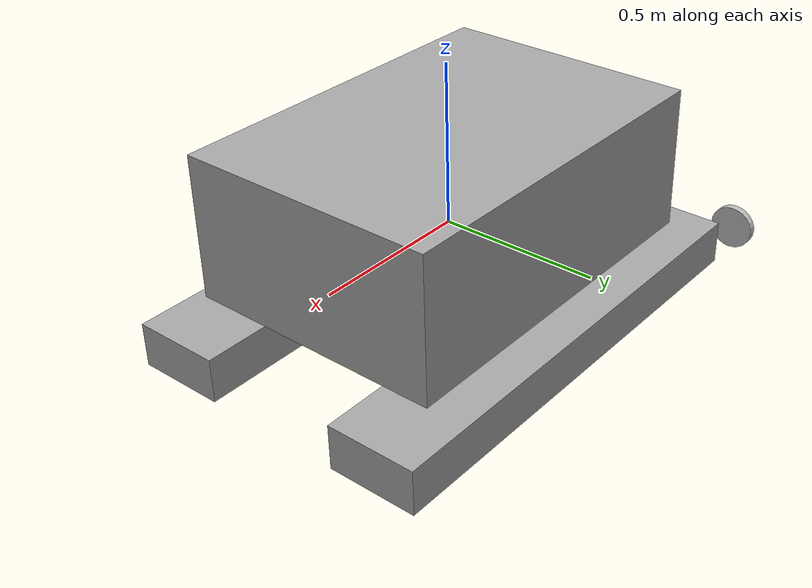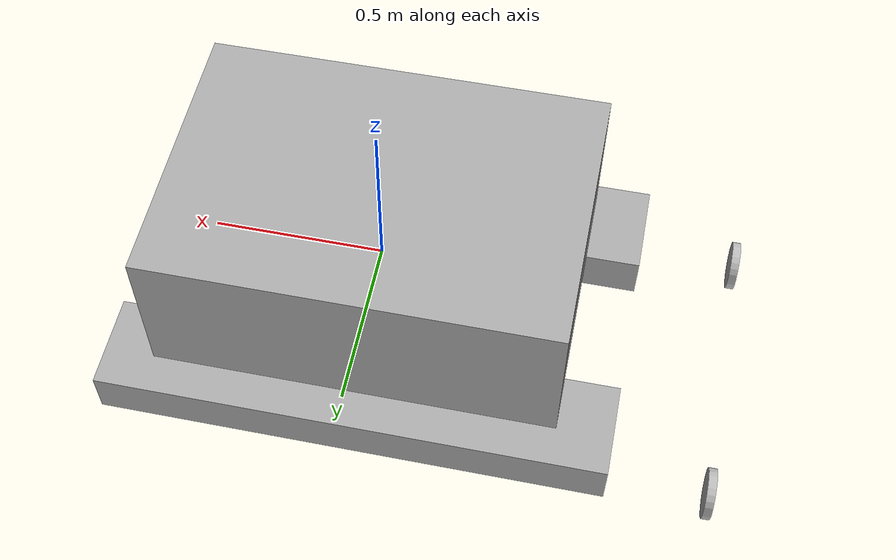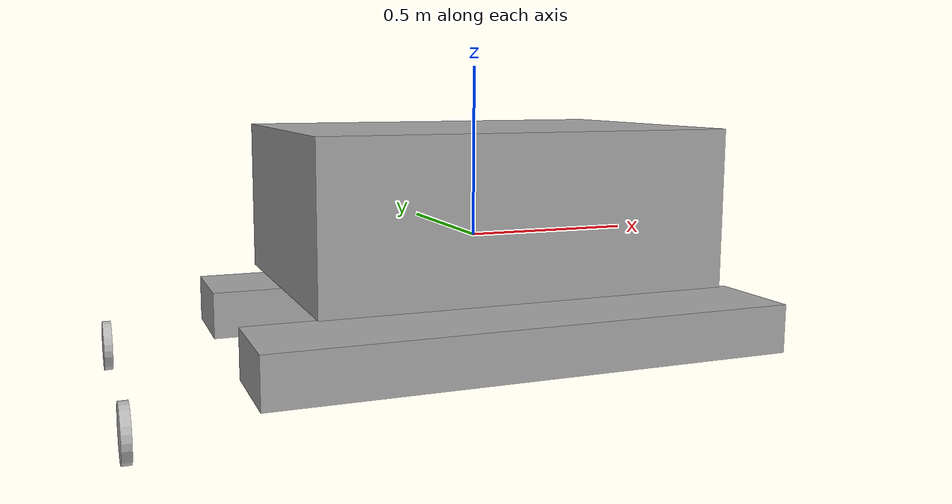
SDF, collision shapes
<?xml version="1.0"?>
<sdf version="1.9">
  <model name="gamantaray_boat">
    <pose>0 0 0 0 0 0</pose>

    <link name="base_link">
      <gravity>true</gravity>
      <pose>0 0 0 0 0 0</pose>

      <inertial>
        <pose>0 0 -0.05 0 0 0</pose>
        <mass>55.0</mass>
        <inertia>
          <ixx>16.0</ixx>
          <ixy>0</ixy>
          <ixz>0</ixz>
          <iyy>40.0</iyy>
          <iyz>0</iyz>
          <izz>36.0</izz>
        </inertia>
      </inertial>

      <visual name="assembly_visual">
        <!-- Visual waterline offset for the imported OBJ. Buoyancy is handled
             by the two pontoon collision volumes below. -->
        <pose>-1.144 0 -0.28 0 0 0</pose>
        <geometry>
          <mesh>
            <uri>model://gamantaray_boat/meshes/assembly_2_0.obj</uri>
            <scale>0.02 0.02 0.02</scale>
          </mesh>
        </geometry>
      </visual>

      <collision name="main_hull_collision">
        <pose>0 0 0.1 0 0 0</pose>
        <geometry>
          <box>
            <size>1.175 0.82 0.45</size>
          </box>
        </geometry>
        <surface>
          <contact>
            <collide_without_contact>false</collide_without_contact>
          </contact>
        </surface>
      </collision>

      <collision name="left_buoyancy_volume">
        <pose>0 0.36 -0.24 0 0 0</pose>
        <geometry>
          <box>
            <size>1.50 0.28 0.14</size>
          </box>
        </geometry>
        <surface>
          <contact>
            <collide_without_contact>true</collide_without_contact>
          </contact>
        </surface>
      </collision>

      <collision name="right_buoyancy_volume">
        <pose>0 -0.36 -0.24 0 0 0</pose>
        <geometry>
          <box>
            <size>1.50 0.28 0.14</size>
          </box>
        </geometry>
        <surface>
          <contact>
            <collide_without_contact>true</collide_without_contact>
          </contact>
        </surface>
      </collision>

      <visual name="lidar_mast_visual">
        <pose>0.52 0 0.78 0 0 0</pose>
        <geometry>
          <cylinder>
            <radius>0.025</radius>
            <length>1.42</length>
          </cylinder>
        </geometry>
        <material>
          <diffuse>0.65 0.65 0.65 1</diffuse>
        </material>
      </visual>

      <visual name="sensor_crossbar_visual">
        <pose>0.52 0 0.98 0 0 0</pose>
        <geometry>
          <box>
            <size>0.16 0.40 0.05</size>
          </box>
        </geometry>
        <material>
          <diffuse>0.72 0.72 0.72 1</diffuse>
        </material>
      </visual>

      <sensor name="imu_sensor" type="imu">
        <topic>/asv/imu/data</topic>
        <always_on>true</always_on>
        <update_rate>100</update_rate>
      </sensor>

      <sensor name="ardupilot_imu_sensor" type="imu">
        <pose>0 0 0 3.141593 0 0</pose>
        <always_on>true</always_on>
        <update_rate>100</update_rate>
      </sensor>

      <sensor name="gps_sensor" type="navsat">
        <pose>0.52 0 1.00 0 0 0</pose>
        <topic>/asv/gps/fix</topic>
        <always_on>true</always_on>
        <update_rate>10</update_rate>
        <navsat>
          <position_sensing>
            <horizontal>
              <noise type="gaussian">
                <mean>0</mean>
                <stddev>0.4</stddev>
              </noise>
            </horizontal>
            <vertical>
              <noise type="gaussian">
                <mean>0</mean>
                <stddev>0.8</stddev>
              </noise>
            </vertical>
          </position_sensing>
        </navsat>
      </sensor>

      <sensor name="lidar_sensor" type="gpu_lidar">
        <pose>0.95 0 0.32 0 0 0</pose>
        <topic>/asv/lidar/scan_raw</topic>
        <always_on>true</always_on>
        <visualize>true</visualize>
        <update_rate>15</update_rate>
        <lidar>
          <scan>
            <horizontal>
              <samples>720</samples>
              <resolution>1</resolution>
              <min_angle>-3.14159</min_angle>
              <max_angle>3.14159</max_angle>
            </horizontal>
            <vertical>
              <samples>1</samples>
              <resolution>1</resolution>
              <min_angle>0</min_angle>
              <max_angle>0</max_angle>
            </vertical>
          </scan>
          <range>
            <min>0.45</min>
            <max>10.0</max>
            <resolution>0.02</resolution>
          </range>
          <noise>
            <type>gaussian</type>
            <mean>0.0</mean>
            <stddev>0.015</stddev>
          </noise>
        </lidar>
      </sensor>

      <sensor name="front_camera_sensor" type="camera">
        <pose>0.85 0 1.25 0 0.10 0</pose>
        <topic>/asv/camera/front/image</topic>
        <always_on>true</always_on>
        <update_rate>10</update_rate>
        <visualize>true</visualize>
        <camera>
          <horizontal_fov>1.3962634</horizontal_fov>
          <image>
            <width>640</width>
            <height>360</height>
            <format>R8G8B8</format>
          </image>
          <clip>
            <near>0.05</near>
            <far>80.0</far>
          </clip>
        </camera>
      </sensor>
    </link>

    <link name="left_propeller_link">
      <gravity>true</gravity>
      <pose relative_to="left_propeller_joint">0 0 0 0 0 0</pose>
      <collision name="left_propeller_collision">
        <pose>0 0 0 0 1.570796 0</pose>
        <geometry>
          <cylinder>
            <radius>0.075</radius>
            <length>0.025</length>
          </cylinder>
        </geometry>
      </collision>
      <inertial>
        <mass>0.10</mass>
        <inertia>
          <ixx>0.00010</ixx>
          <ixy>0</ixy>
          <ixz>0</ixz>
          <iyy>0.00010</iyy>
          <iyz>0</iyz>
          <izz>0.00015</izz>
        </inertia>
      </inertial>
    </link>

    <joint name="left_propeller_joint" type="revolute">
      <pose relative_to="base_link">-1.05 0.41 -0.35 0 0 0</pose>
      <parent>base_link</parent>
      <child>left_propeller_link</child>
      <axis>
        <xyz>1 0 0</xyz>
        <limit>
          <lower>-1e+16</lower>
          <upper>1e+16</upper>
          <effort>120</effort>
          <velocity>900</velocity>
        </limit>
        <dynamics>
          <damping>0.04</damping>
          <friction>0.01</friction>
        </dynamics>
      </axis>
    </joint>

    <link name="right_propeller_link">
      <gravity>true</gravity>
      <pose relative_to="right_propeller_joint">0 0 0 0 0 0</pose>
      <collision name="right_propeller_collision">
        <pose>0 0 0 0 1.570796 0</pose>
        <geometry>
          <cylinder>
            <radius>0.075</radius>
            <length>0.025</length>
          </cylinder>
        </geometry>
      </collision>
      <inertial>
        <mass>0.10</mass>
        <inertia>
          <ixx>0.00010</ixx>
          <ixy>0</ixy>
          <ixz>0</ixz>
          <iyy>0.00010</iyy>
          <iyz>0</iyz>
          <izz>0.00015</izz>
        </inertia>
      </inertial>
    </link>

    <joint name="right_propeller_joint" type="revolute">
      <pose relative_to="base_link">-1.05 -0.41 -0.35 0 0 0</pose>
      <parent>base_link</parent>
      <child>right_propeller_link</child>
      <axis>
        <xyz>1 0 0</xyz>
        <limit>
          <lower>-1e+16</lower>
          <upper>1e+16</upper>
          <effort>120</effort>
          <velocity>900</velocity>
        </limit>
        <dynamics>
          <damping>0.04</damping>
          <friction>0.01</friction>
        </dynamics>
      </axis>
    </joint>

    <plugin filename="gz-sim-joint-state-publisher-system"
            name="gz::sim::systems::JointStatePublisher"/>

    <plugin filename="gz-sim-odometry-publisher-system"
            name="gz::sim::systems::OdometryPublisher">
      <odom_frame>odom</odom_frame>
      <robot_base_frame>base_link</robot_base_frame>
      <odom_publish_frequency>30</odom_publish_frequency>
      <odom_topic>/asv/odom</odom_topic>
      <dimensions>3</dimensions>
    </plugin>

    <plugin filename="gz-waves1-hydrodynamics-system"
            name="gz::sim::systems::Hydrodynamics">
      <enable>gamantaray_boat::base_link::left_buoyancy_volume</enable>
      <enable>gamantaray_boat::base_link::right_buoyancy_volume</enable>
      <hydrodynamics>
        <damping_on>1</damping_on>
        <viscous_drag_on>1</viscous_drag_on>
        <pressure_drag_on>1</pressure_drag_on>
        <cDampL1>1.0E-5</cDampL1>
        <cDampL2>1.0E-5</cDampL2>
        <cDampR1>1.0E-5</cDampR1>
        <cDampR2>1.0E-5</cDampR2>
        <cPDrag1>100.0</cPDrag1>
        <cPDrag2>110.0</cPDrag2>
        <fPDrag>0.35</fPDrag>
        <cSDrag1>115.0</cSDrag1>
        <cSDrag2>130.0</cSDrag2>
        <fSDrag>0.40</fSDrag>
        <vRDrag>1.0</vRDrag>
      </hydrodynamics>
    </plugin>

    <plugin filename="gz-sim-joint-controller-system"
            name="gz::sim::systems::JointController">
      <joint_name>left_propeller_joint</joint_name>
      <initial_velocity>0.0</initial_velocity>
      <p_gain>0.15</p_gain>
    </plugin>
    <plugin filename="gz-sim-joint-controller-system"
            name="gz::sim::systems::JointController">
      <joint_name>right_propeller_joint</joint_name>
      <initial_velocity>0.0</initial_velocity>
      <p_gain>0.15</p_gain>
    </plugin>

    <plugin filename="gz-sim-thruster-system"
            name="gz::sim::systems::Thruster">
      <joint_name>left_propeller_joint</joint_name>
      <thrust_coefficient>0.01</thrust_coefficient>
      <fluid_density>1000</fluid_density>
      <propeller_diameter>0.15</propeller_diameter>
      <velocity_control>true</velocity_control>
      <use_angvel_cmd>false</use_angvel_cmd>
      <max_thrust_cmd>160</max_thrust_cmd>
      <min_thrust_cmd>-90</min_thrust_cmd>
    </plugin>
    <plugin filename="gz-sim-thruster-system"
            name="gz::sim::systems::Thruster">
      <joint_name>right_propeller_joint</joint_name>
      <thrust_coefficient>0.01</thrust_coefficient>
      <fluid_density>1000</fluid_density>
      <propeller_diameter>0.15</propeller_diameter>
      <velocity_control>true</velocity_control>
      <use_angvel_cmd>false</use_angvel_cmd>
      <max_thrust_cmd>160</max_thrust_cmd>
      <min_thrust_cmd>-90</min_thrust_cmd>
    </plugin>

    <plugin name="ArduPilotPlugin" filename="ArduPilotPlugin">
      <fdm_addr>127.0.0.1</fdm_addr>
      <fdm_port_in>9002</fdm_port_in>
      <connectionTimeoutMaxCount>50</connectionTimeoutMaxCount>
      <lock_step>1</lock_step>
      <no_time_sync>1</no_time_sync>
      <modelXYZToAirplaneXForwardZDown>0 0 0 3.141593 0 0</modelXYZToAirplaneXForwardZDown>
      <gazeboXYZToNED>0 0 0 3.141593 0 0</gazeboXYZToNED>
      <imuName>ardupilot_imu_sensor</imuName>

      <control channel="0">
        <jointName>left_propeller_joint</jointName>
        <useForce>1</useForce>
        <multiplier>320</multiplier>
        <offset>-0.5</offset>
        <servo_min>1000</servo_min>
        <servo_max>2000</servo_max>
        <type>COMMAND</type>
        <cmd_topic>/asv/ardupilot/raw_left_thrust</cmd_topic>
      </control>
      <control channel="2">
        <jointName>right_propeller_joint</jointName>
        <useForce>1</useForce>
        <multiplier>320</multiplier>
        <offset>-0.5</offset>
        <servo_min>1000</servo_min>
        <servo_max>2000</servo_max>
        <type>COMMAND</type>
        <cmd_topic>/asv/ardupilot/raw_right_thrust</cmd_topic>
      </control>
    </plugin>
  </model>
</sdf>
